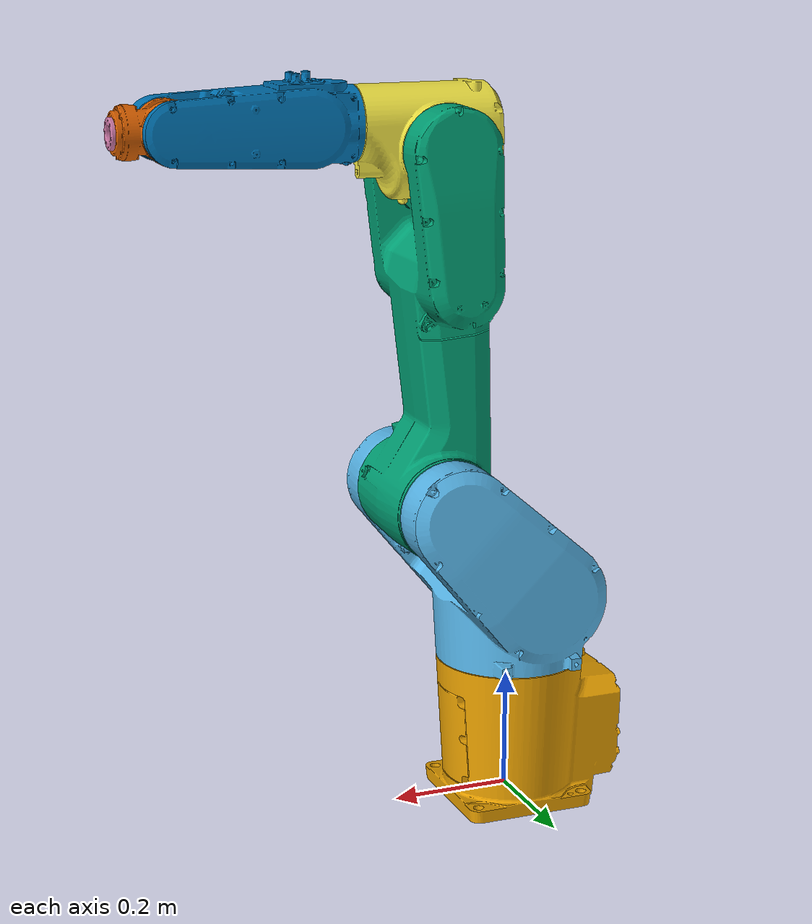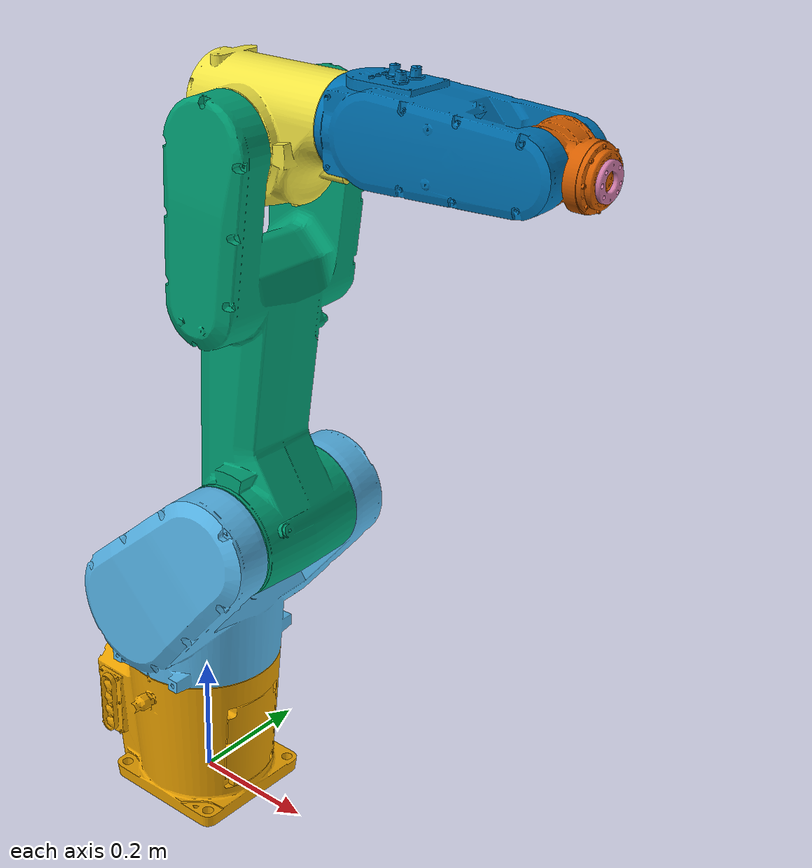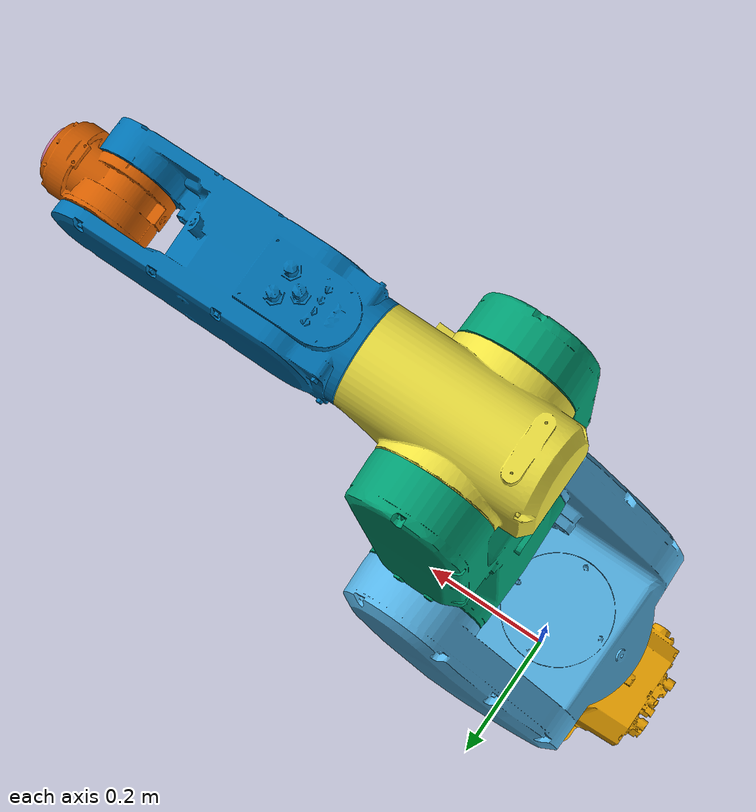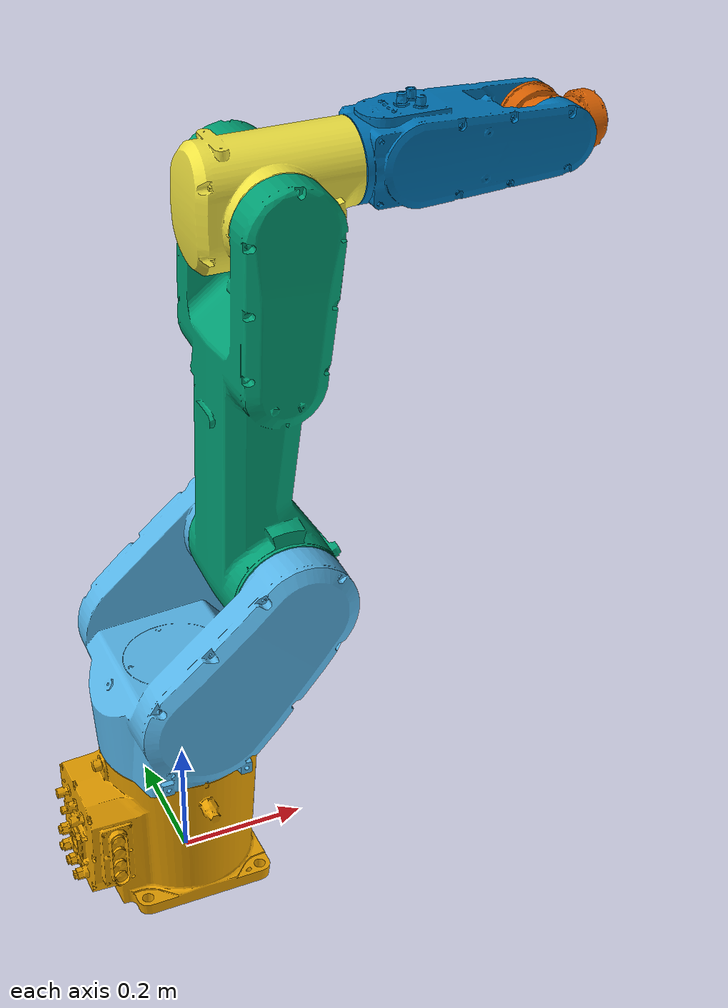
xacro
<?xml version="1.0" ?>
<robot name="abb_irb1300_10_115" xmlns:xacro="http://ros.org/wiki/xacro">
  <xacro:arg name="use_fake_hardware" default="true"/>
  <xacro:property name="use_fake_hardware" value="$(arg use_fake_hardware)"/>
  <xacro:arg name="rws_ip" default="None"/>
  <xacro:property name="rws_ip" value="$(arg rws_ip)"/>
  <xacro:arg name="rws_port" default="80"/>
  <xacro:property name="rws_port" value="$(arg rws_port)"/>
  <!-- Robot description -->
  <xacro:include filename="$(find abb_irb1300_support)/urdf/irb1300_10_115_macro.xacro"/>
  <xacro:abb_irb1300_10_115 prefix=""/>

  <!-- ros2_control -->
  <xacro:include filename="$(find abb_irb1300_support)/urdf/irb1300.ros2_control.xacro" />
  <xacro:abb_ros2_control
    name="ABBMultiInterfaceHardware"
    prefix=""
    use_fake_hardware="${use_fake_hardware}"
    rws_ip="${rws_ip}"
    rws_port="${rws_port}"/>
</robot>

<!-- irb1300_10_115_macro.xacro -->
<robot xmlns:xacro="http://ros.org/wiki/xacro">
  <xacro:include filename="$(find abb_resources)/urdf/common_materials.xacro"/>

  <xacro:macro name="abb_irb1300_10_115" params="prefix">
    <link name="${prefix}base_link">
      <visual>
        <origin xyz="1.09 0 -0.75143" rpy="0 0 0"/>
        <geometry>
          <mesh scale="0.01 0.01 0.01" filename="package://abb_irb1300_support/meshes/irb1300_10_115/visual/base_link.stl"/>
        </geometry>
        <xacro:material_abb_white />
      </visual>
      <collision>
        <origin xyz="1.09 0 -0.75143" rpy="0 0 0"/>
        <geometry>
          <mesh filename="package://abb_irb1300_support/meshes/irb1300_10_115/collision/base_link.stl"/>
        </geometry>
        <xacro:material_abb_yellow />
      </collision>
    </link>
    <link name="${prefix}link_1">
      <visual>
        <origin xyz="1.09 0 -0.98943" rpy="0 0 0"/>
        <geometry>
          <mesh scale="0.01 0.01 0.01" filename="package://abb_irb1300_support/meshes/irb1300_10_115/visual/link_1.stl"/>
        </geometry>
        <xacro:material_abb_white />
      </visual>
      <collision>
        <origin xyz="1.09 0 -0.98943" rpy="0 0 0"/>
        <geometry>
          <mesh filename="package://abb_irb1300_support/meshes/irb1300_10_115/collision/link_1.stl"/>
        </geometry>
        <xacro:material_abb_yellow />
      </collision>
    </link>
    <link name="${prefix}link_2">
      <visual>
        <origin xyz="0.945 0 -1.279" rpy="0 0 0"/>
        <geometry>
          <mesh scale="0.01 0.01 0.01" filename="package://abb_irb1300_support/meshes/irb1300_10_115/visual/link_2.stl"/>
        </geometry>
        <xacro:material_abb_white />
      </visual>
      <collision>
        <origin xyz="0.945 0 -1.279" rpy="0 0 0"/>
        <geometry>
          <mesh filename="package://abb_irb1300_support/meshes/irb1300_10_115/collision/link_2.stl"/>
        </geometry>
        <xacro:material_abb_yellow />
      </collision>
    </link>
    <link name="${prefix}link_3">
      <visual>
        <origin xyz="0.945 0 -1.8537" rpy="0 0 0"/>
        <geometry>
          <mesh scale="0.01 0.01 0.01" filename="package://abb_irb1300_support/meshes/irb1300_10_115/visual/link_3.stl"/>
        </geometry>
        <xacro:material_abb_white />
      </visual>
      <collision>
        <origin xyz="0.945 0 -1.8537" rpy="0 0 0"/>
        <geometry>
          <mesh filename="package://abb_irb1300_support/meshes/irb1300_10_115/collision/link_3.stl"/>
        </geometry>
        <xacro:material_abb_yellow />
      </collision>
    </link>
    <link name="${prefix}link_4">
      <visual>
        <origin xyz="0.8175 0 -1.897" rpy="0 0 0"/>
        <geometry>
          <mesh scale="0.01 0.01 0.01" filename="package://abb_irb1300_support/meshes/irb1300_10_115/visual/link_4.stl"/>
        </geometry>
        <xacro:material_abb_white />
      </visual>
      <collision>
        <origin xyz="0.8175 0 -1.897" rpy="0 0 0"/>
        <geometry>
          <mesh filename="package://abb_irb1300_support/meshes/irb1300_10_115/collision/link_4.stl"/>
        </geometry>
        <xacro:material_abb_yellow />
      </collision>
    </link>
    <link name="${prefix}link_5">
      <visual>
        <origin xyz="0.5175 0 -1.897" rpy="0 0 0"/>
        <geometry>
          <mesh scale="0.01 0.01 0.01" filename="package://abb_irb1300_support/meshes/irb1300_10_115/visual/link_5.stl"/>
        </geometry>
        <xacro:material_abb_white />
      </visual>
      <collision>
        <origin xyz="0.5175 0 -1.897" rpy="0 0 0"/>
        <geometry>
          <mesh filename="package://abb_irb1300_support/meshes/irb1300_10_115/collision/link_5.stl"/>
        </geometry>
        <xacro:material_abb_yellow />
      </collision>
    </link>
    <link name="${prefix}link_6">
      <visual>
        <origin xyz="0.4357 0 -1.89495" rpy="0 0 0"/>
        <geometry>
          <mesh scale="0.01 0.01 0.01" filename="package://abb_irb1300_support/meshes/irb1300_10_115/visual/link_6.stl"/>
        </geometry>
        <xacro:material_abb_black />
      </visual>
      <collision>
        <origin xyz="0.4357 0 -1.89495" rpy="0 0 0"/>
        <geometry>
          <mesh filename="package://abb_irb1300_support/meshes/irb1300_10_115/collision/link_6.stl"/>
        </geometry>
        <xacro:material_abb_black />
      </collision>
    </link>
    <!-- end of link list -->

    <!-- joint list -->
    <joint name="${prefix}joint_1" type="revolute">
      <origin xyz="0 0 0.238" rpy="0 0 0"/>
      <parent link="${prefix}base_link"/>
      <child link="${prefix}link_1"/>
      <axis xyz="0 0 1"/>
      <limit lower="${radians(-180)}" upper="${radians(180)}" effort="1000" velocity="${radians(240)}"/>
    </joint>
    <joint name="${prefix}joint_2" type="revolute">
      <origin xyz="0.145 0 0.29" rpy="0 0 0"/>
      <parent link="${prefix}link_1"/>
      <child link="${prefix}link_2"/>
      <axis xyz="0 1 0"/>
      <limit lower="${radians(-95)}" upper="${radians(155)}" effort="1000" velocity="${radians(228)}"/>
    </joint>
    <joint name="${prefix}joint_3" type="revolute">
      <origin xyz="0 0 0.575" rpy="0 0 0"/>
      <parent link="${prefix}link_2"/>
      <child link="${prefix}link_3"/>
      <axis xyz="0 1 0"/>
      <limit lower="${radians(-210)}" upper="${radians(65)}" effort="1000" velocity="${radians(336)}"/>
    </joint>
    <joint name="${prefix}joint_4" type="revolute">
      <origin xyz="0.1275 0 0.0435" rpy="0 0 0"/>
      <parent link="${prefix}link_3"/>
      <child link="${prefix}link_4"/>
      <axis xyz="1 0 0"/>
      <limit lower="${radians(-230)}" upper="${radians(230)}" effort="1000" velocity="${radians(500)}"/>
    </joint>
    <joint name="${prefix}joint_5" type="revolute">
      <origin xyz="0.3 0 0" rpy="0 0 0"/>
      <parent link="${prefix}link_4"/>
      <child link="${prefix}link_5"/>
      <axis xyz="0 1 0"/>
      <limit lower="${radians(-130)}" upper="${radians(130)}" effort="1000" velocity="${radians(420)}"/>
    </joint>
    <joint name="${prefix}joint_6" type="revolute">
      <origin xyz="0.08175 0 -0.003" rpy="0 0 0"/>
      <parent link="${prefix}link_5"/>
      <child link="${prefix}link_6"/>
      <axis xyz="1 0 0"/>
      <limit lower="${radians(-400)}" upper="${radians(400)}" effort="1000" velocity="${radians(720)}"/>
    </joint>
    <!-- end of joint list -->

    <!-- ROS-Industrial 'base' frame: base_link to ABB World Coordinates transform -->
    <link name="${prefix}base" />
    <joint name="${prefix}base_link-base" type="fixed">
      <origin xyz="0 0 0" rpy="0 0 0"/>
      <parent link="${prefix}base_link"/>
      <child link="${prefix}base"/>
    </joint>

    <!-- ROS-Industrial 'flange' frame: attachment point for EEF models -->
    <link name="${prefix}flange"/>
    <joint type="fixed" name="${prefix}joint_6-flange">
      <origin xyz="0 0 0" rpy="0 0 0"/>
      <parent link="${prefix}link_6"/>
      <child link="${prefix}flange"/>
    </joint>

    <!-- ROS-Industrial 'tool0' frame: all-zeros tool frame -->
    <link name="${prefix}tool0" />
    <joint name="${prefix}link_6-tool0" type="fixed">
      <origin xyz="0 0 0" rpy="0 ${radians(90)} 0" />
      <parent link="${prefix}flange" />
      <child link="${prefix}tool0" />
    </joint>
  </xacro:macro>
</robot>
